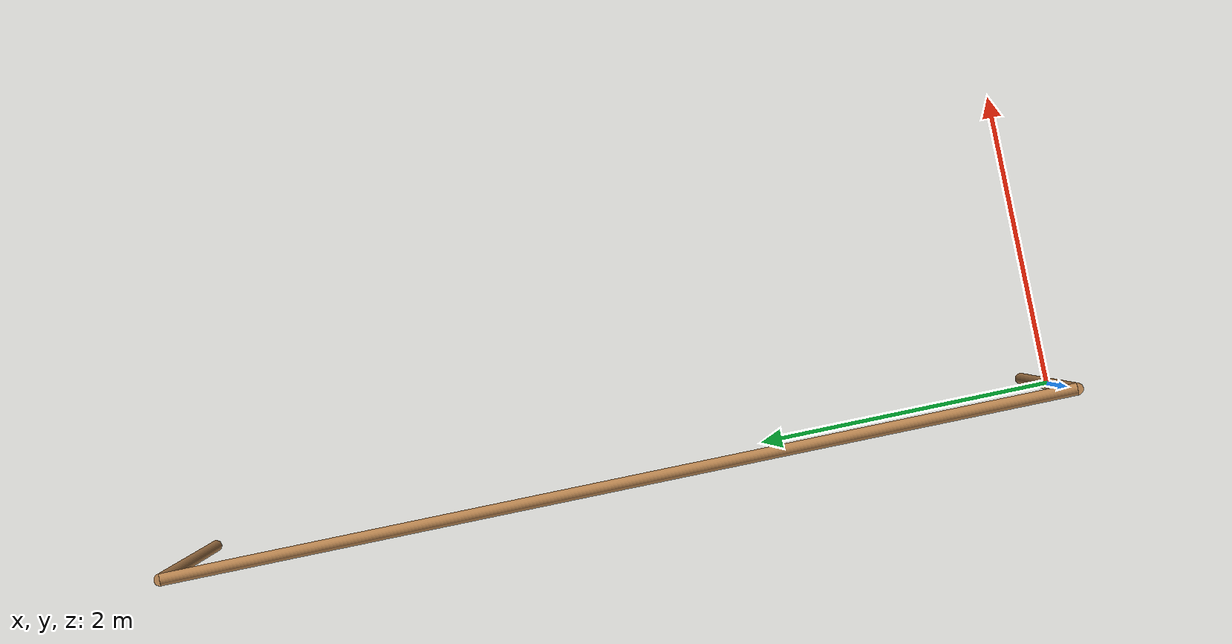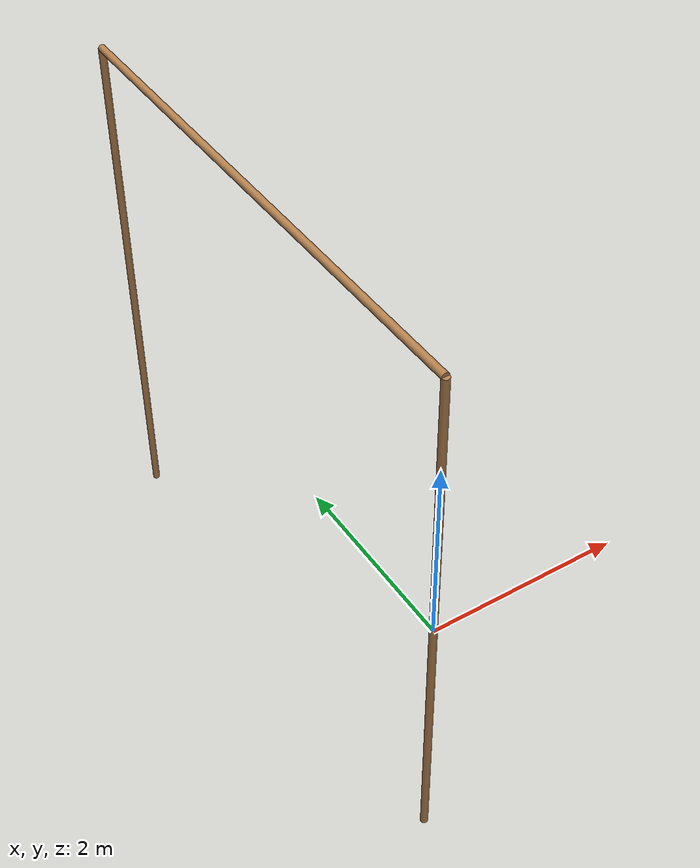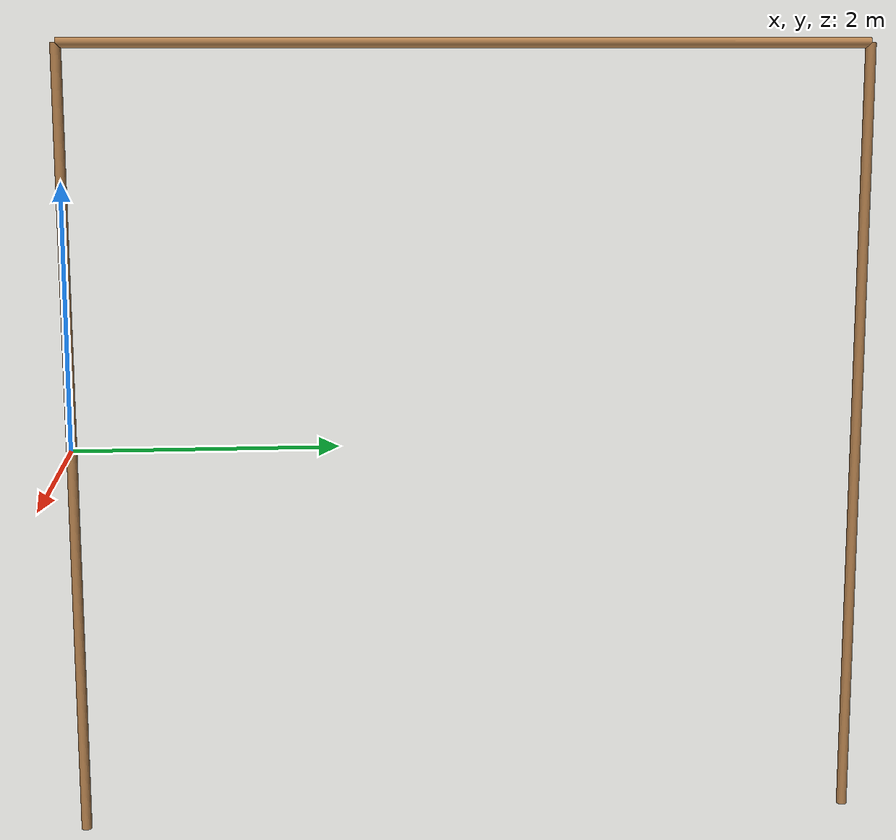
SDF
<?xml version="1.0" ?>

  <sdf version="1.5">
    <model name="tsduav_t4_bar">
      <static>true</static>

      <link name="base">
      <pose>0 0 0 0 0 0</pose>
      <inertial>
        <pose>0 0 0 0 0 0</pose>
        <mass>10.5</mass>
        <inertia>
          <ixx>5.4</ixx>
          <iyy>4.0</iyy>
          <izz>3.7</izz>
          <ixy>0</ixy>
          <ixz>0</ixz>
          <iyz>0</iyz>
        </inertia>
      </inertial>
      <collision name="base_collision">
        <pose>0 0 0  0 0 0</pose>
        <geometry>
          <cylinder>
            <length>6</length>
            <radius>0.04</radius>
          </cylinder>
        </geometry>
        <surface>
          <contact>
            <ode>
              <max_vel>100.0</max_vel>
              <min_depth>0.001</min_depth>
            </ode>
          </contact>
          <friction>
            <ode>
              <mu>100000.0</mu>
              <mu2>100000.0</mu2>
            </ode>
          </friction>
        </surface>
      </collision>
      <visual name="base_visual">
        <geometry>
          <cylinder>
            <length>6</length>
            <radius>0.04</radius>
          </cylinder>
        </geometry>
        <material>
          <script>
            <name>Gazebo/WoodFloor</name>
          </script>
        </material>
      </visual>
    </link>

    <link name="base2">
    <pose>0 3 3 1.5707963267948966 0 0</pose>
    <inertial>
      <pose>0 0 0 0 0 0</pose>
      <mass>10.5</mass>
      <inertia>
        <ixx>5.4</ixx>
        <iyy>4.0</iyy>
        <izz>3.7</izz>
        <ixy>0</ixy>
        <ixz>0</ixz>
        <iyz>0</iyz>
      </inertia>
    </inertial>
    <collision name="base_2_collision">
      <pose>0 0 0  0 0 0</pose>
      <geometry>
        <cylinder>
          <length>6</length>
          <radius>0.04</radius>
        </cylinder>
      </geometry>
      <surface>
        <contact>
          <ode>
            <max_vel>100.0</max_vel>
            <min_depth>0.001</min_depth>
          </ode>
        </contact>
        <friction>
          <ode>
            <mu>100000.0</mu>
            <mu2>100000.0</mu2>
          </ode>
        </friction>
      </surface>
    </collision>
    <visual name="base_2_visual">
      <geometry>
        <cylinder>
          <length>6</length>
          <radius>0.04</radius>
        </cylinder>
      </geometry>
      <material>
        <script>
          <name>Gazebo/WoodFloor</name>
        </script>
      </material>
    </visual>
  </link>
  <joint name='link_base_joint' type='fixed'>
    <child>base</child>
    <parent>base2</parent>
  </joint>
  <link name="base3">
  <pose>0 6 0 0 0 0</pose>
  <inertial>
    <pose>0 0 0 0 0 0</pose>
    <mass>10.5</mass>
    <inertia>
      <ixx>5.4</ixx>
      <iyy>4.0</iyy>
      <izz>3.7</izz>
      <ixy>0</ixy>
      <ixz>0</ixz>
      <iyz>0</iyz>
    </inertia>
  </inertial>
  <collision name="base_3_collision">
    <pose>0 0 0  0 0 0</pose>
    <geometry>
      <cylinder>
        <length>6</length>
        <radius>0.04</radius>
      </cylinder>
    </geometry>
    <surface>
      <contact>
        <ode>
          <max_vel>100.0</max_vel>
          <min_depth>0.001</min_depth>
        </ode>
      </contact>
      <friction>
        <ode>
          <mu>100000.0</mu>
          <mu2>100000.0</mu2>
        </ode>
      </friction>
    </surface>
  </collision>
  <visual name="base_3_visual">
    <geometry>
      <cylinder>
        <length>6</length>
        <radius>0.04</radius>
      </cylinder>
    </geometry>
    <material>
      <script>
        <name>Gazebo/WoodFloor</name>
      </script>
    </material>
  </visual>
</link>
<joint name='link_3_base_joint' type='fixed'>
  <child>base2</child>
  <parent>base3</parent>
</joint>

</model>
</sdf>
